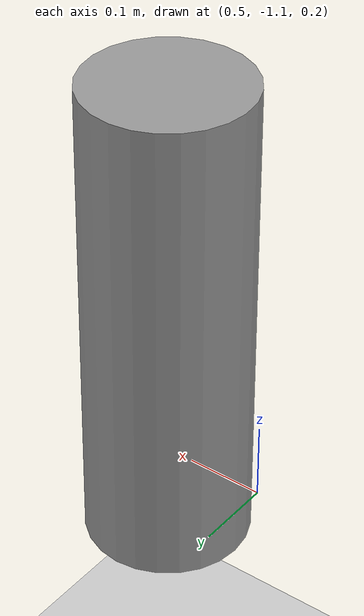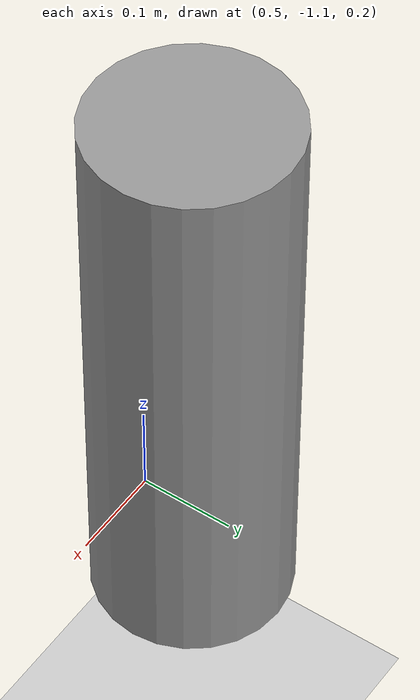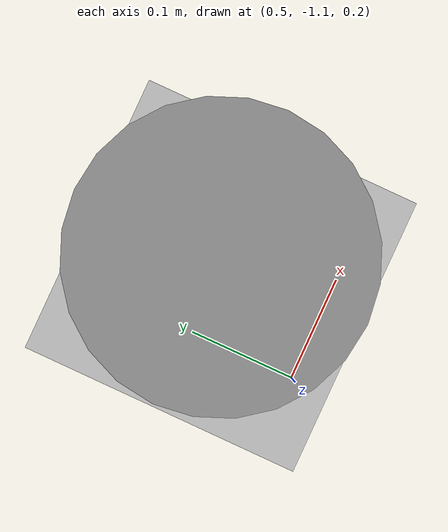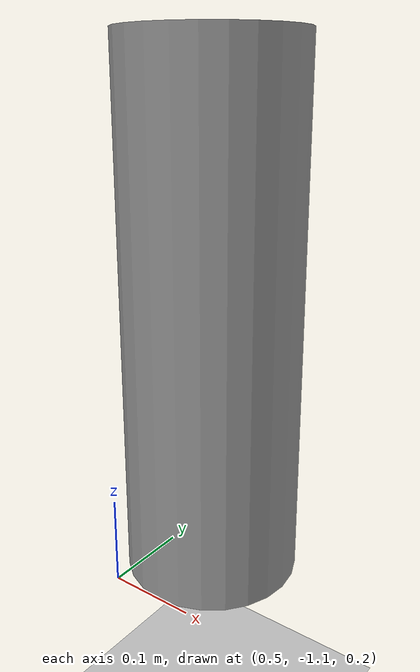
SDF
<?xml version="1.0" ?>
<sdf version="1.4">
  <world name="default">
    <!-- http://answers.ros.org/question/46694/ode-integration-method-world-vs-quick-in-gazebo-ros-fuerte/ -->

      <physics type="ode">
	<gravity xyz="0 0 -9.8"/>
	  <ode>
	    <solver type="world" dt="0.001" iters="10" sor="1.3"/>
	    <constraints cfm="0.0" erp="0.2" contact_max_correcting_vel="10000.0" contact_surface_layer="0.001"/>
	  </ode>
      </physics>

    <!-- A global light source -->
    <include>
      <uri>model://sun</uri>
    </include>
    <!-- A ground plane -->
    <include>
      <uri>model://ground_plane</uri>
    </include>

       <model name='unit_cylinder_1'>
      <pose>0.561396 -1 0.5 0 -0 0</pose>
      <link name='link'>
        <inertial>
          <mass>1</mass>
          <inertia>
            <ixx>1</ixx>
            <ixy>0</ixy>
            <ixz>0</ixz>
            <iyy>1</iyy>
            <iyz>0</iyz>
            <izz>1</izz>
          </inertia>
        </inertial>
        <collision name='collision'>
          <geometry>
            <cylinder>
              <radius>0.1</radius>
              <length>0.6</length>
            </cylinder>
          </geometry>
          <max_contacts>10</max_contacts>
          <surface>
            <bounce/>
            <friction>
              <ode/>
            </friction>
            <contact>
              <ode/>
            </contact>
          </surface>
        </collision>
        <visual name='visual'>
          <geometry>
            <cylinder>
              <radius>0.1</radius>
              <length>0.6</length>
            </cylinder>
          </geometry>
          <material>
            <script>
              <uri>file://media/materials/scripts/gazebo.material</uri>
              <name>Gazebo/Grey</name>
            </script>
          </material>
        </visual>
        <velocity_decay>
          <linear>0</linear>
          <angular>0</angular>
        </velocity_decay>
        <self_collide>0</self_collide>
        <kinematic>0</kinematic>
        <gravity>1</gravity>
      </link>
      <static>0</static>
    </model>

</world>
</sdf>
